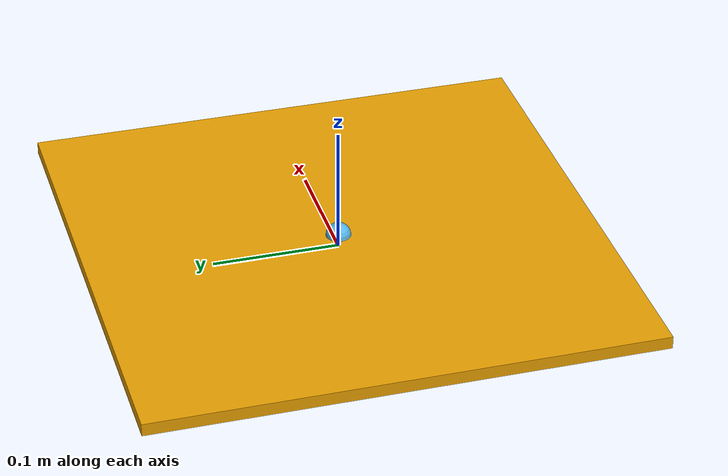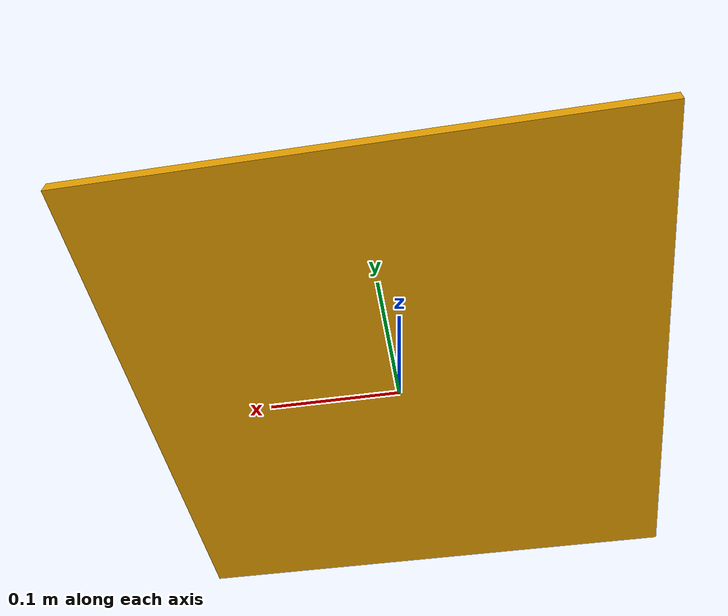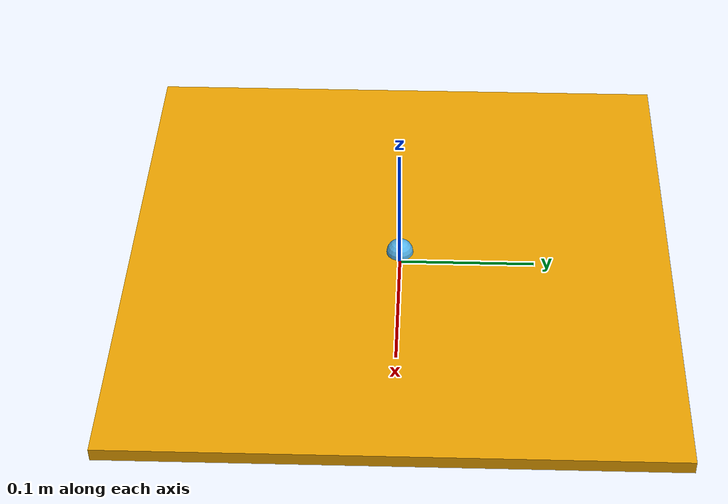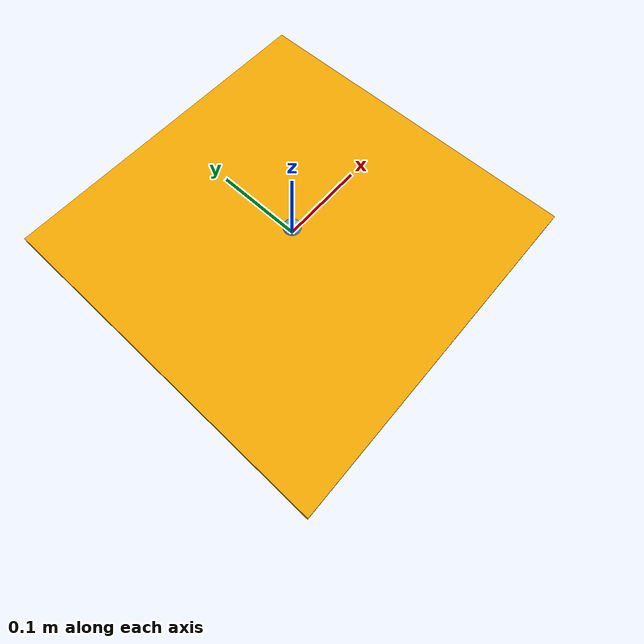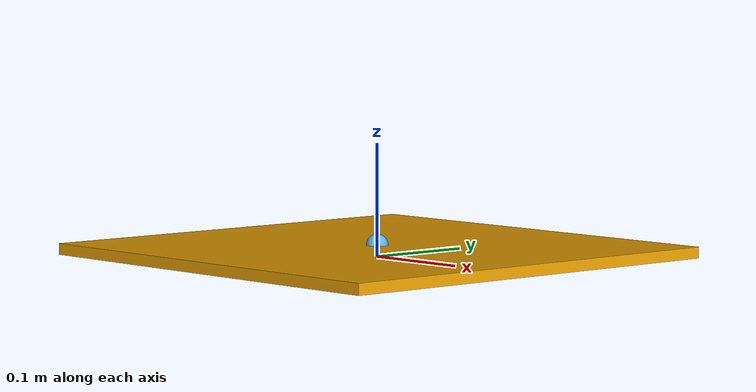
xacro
<?xml version="1.0"?>
<robot name="test_model" xmlns:xacro="http://www.ros.org/wiki/xacro">

  <link name="base_footprint">
    <visual>
      <origin rpy="0 0 0 " xyz="0 0 0.005"/>
      <geometry>
          <box size="0.4 0.4 0.01"/>
      </geometry>
    </visual>
    <collision>
      <origin rpy="0 0 0 " xyz="0 0 0.005"/>
      <geometry>
        <box size="0.4 0.4 0.01"/>
      </geometry>
    </collision>
  </link>

  <joint name="footprint_joint" type="fixed">
    <parent link="base_footprint"/>
    <child link="battery_link"/>
    <origin rpy="0 0 0" xyz="0 0 0.01"/>
  </joint>

  <link name="battery_link">
    <visual>
      <origin rpy="0 0 0" xyz="0 0 0"/>
      <geometry>
        <sphere radius="0.01"/>
      </geometry>
    </visual>
    <collision>
      <origin rpy="0 0 0" xyz="0 0 0"/>
      <geometry>
        <sphere radius="0.01"/>
      </geometry>
    </collision>
  </link>

  <xacro:include filename="$(find gazebo_ros_battery)/xacro/battery.xacro"/>
  <xacro:battery sensor_name="battery" frame_id="battery_link" params_yaml="$(find gazebo_ros_battery)/params/G24B4.yaml"/>

</robot>
